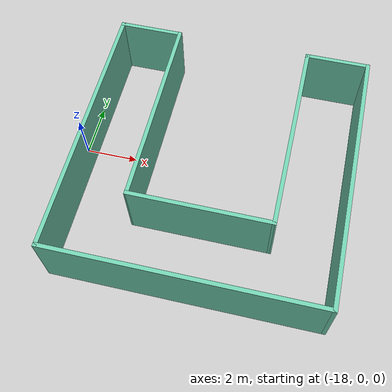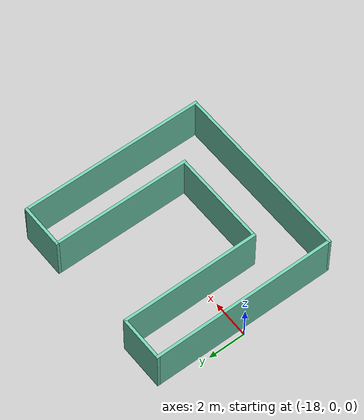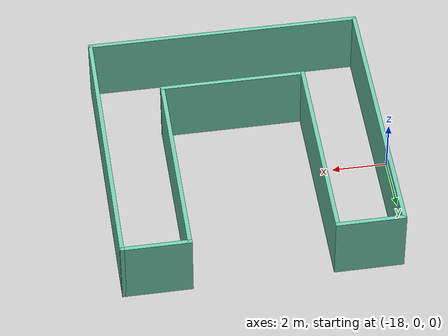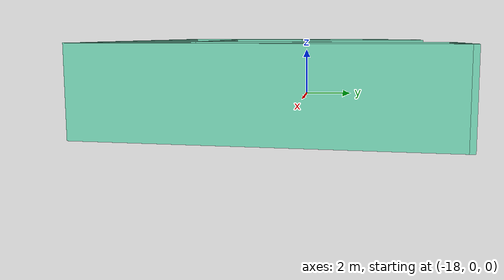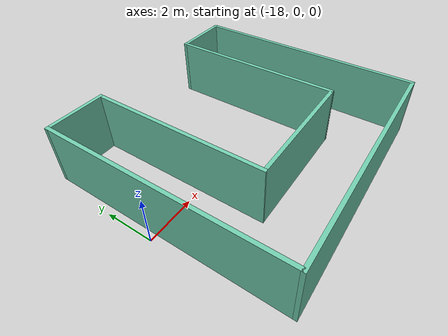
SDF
<?xml version='1.0'?>
<sdf version='1.6'>
  <model name='mybuilding'>
    <pose frame=''>-12.7241 -0.244758 0 0 -0 0</pose>
    <link name='Wall_12'>
      <collision name='Wall_12_Collision'>
        <geometry>
          <box>
            <size>10 0.15 2.5</size>
          </box>
        </geometry>
        <pose frame=''>0 0 1.25 0 -0 0</pose>
      </collision>
      <visual name='Wall_12_Visual'>
        <pose frame=''>0 0 1.25 0 -0 0</pose>
        <geometry>
          <box>
            <size>10 0.15 2.5</size>
          </box>
        </geometry>
        <material>
          <script>
            <uri>file://media/materials/scripts/gazebo.material</uri>
            <name>Gazebo/Grey</name>
          </script>
          <ambient>0.435294 0.796078 0.67451 1</ambient>
        </material>
        <meta>
          <layer>0</layer>
        </meta>
      </visual>
      <pose frame=''>6.5e-05 -4.92524 0 0 -0 0</pose>
    </link>
    <link name='Wall_14'>
      <collision name='Wall_14_Collision'>
        <geometry>
          <box>
            <size>10 0.15 2.5</size>
          </box>
        </geometry>
        <pose frame=''>0 0 1.25 0 -0 0</pose>
      </collision>
      <visual name='Wall_14_Visual'>
        <pose frame=''>0 0 1.25 0 -0 0</pose>
        <geometry>
          <box>
            <size>10 0.15 2.5</size>
          </box>
        </geometry>
        <material>
          <script>
            <uri>file://media/materials/scripts/gazebo.material</uri>
            <name>Gazebo/Grey</name>
          </script>
          <ambient>0.435294 0.796078 0.67451 1</ambient>
        </material>
        <meta>
          <layer>0</layer>
        </meta>
      </visual>
      <pose frame=''>4.92507 -0.000242 0 0 -0 1.5708</pose>
    </link>
    <link name='Wall_15'>
      <collision name='Wall_15_Collision'>
        <geometry>
          <box>
            <size>2.5 0.15 2.5</size>
          </box>
        </geometry>
        <pose frame=''>0 0 1.25 0 -0 0</pose>
      </collision>
      <visual name='Wall_15_Visual'>
        <pose frame=''>0 0 1.25 0 -0 0</pose>
        <geometry>
          <box>
            <size>2.5 0.15 2.5</size>
          </box>
        </geometry>
        <material>
          <script>
            <uri>file://media/materials/scripts/gazebo.material</uri>
            <name>Gazebo/Grey</name>
          </script>
          <ambient>0.435294 0.796078 0.67451 1</ambient>
        </material>
        <meta>
          <layer>0</layer>
        </meta>
      </visual>
      <pose frame=''>3.75007 4.92476 0 0 -0 3.14159</pose>
    </link>
    <link name='Wall_17'>
      <collision name='Wall_17_Collision'>
        <geometry>
          <box>
            <size>2.5 0.15 2.5</size>
          </box>
        </geometry>
        <pose frame=''>0 0 1.25 0 -0 0</pose>
      </collision>
      <visual name='Wall_17_Visual'>
        <pose frame=''>0 0 1.25 0 -0 0</pose>
        <geometry>
          <box>
            <size>2.5 0.15 2.5</size>
          </box>
        </geometry>
        <material>
          <script>
            <uri>file://media/materials/scripts/gazebo.material</uri>
            <name>Gazebo/Grey</name>
          </script>
          <ambient>0.435294 0.796078 0.67451 1</ambient>
        </material>
        <meta>
          <layer>0</layer>
        </meta>
      </visual>
      <pose frame=''>-3.75007 4.92524 0 0 -0 0</pose>
    </link>
    <link name='Wall_18'>
      <collision name='Wall_18_Collision'>
        <geometry>
          <box>
            <size>7.5 0.15 2.5</size>
          </box>
        </geometry>
        <pose frame=''>0 0 1.25 0 -0 0</pose>
      </collision>
      <visual name='Wall_18_Visual'>
        <pose frame=''>0 0 1.25 0 -0 0</pose>
        <geometry>
          <box>
            <size>7.5 0.15 2.5</size>
          </box>
        </geometry>
        <material>
          <script>
            <uri>file://media/materials/scripts/gazebo.material</uri>
            <name>Gazebo/Grey</name>
          </script>
          <ambient>0.435294 0.796078 0.67451 1</ambient>
        </material>
        <meta>
          <layer>0</layer>
        </meta>
      </visual>
      <pose frame=''>-2.57506 1.25024 0 0 0 -1.5708</pose>
    </link>
    <link name='Wall_20'>
      <collision name='Wall_20_Collision'>
        <geometry>
          <box>
            <size>7.5 0.15 2.5</size>
          </box>
        </geometry>
        <pose frame=''>0 0 1.25 0 -0 0</pose>
      </collision>
      <visual name='Wall_20_Visual'>
        <pose frame=''>0 0 1.25 0 -0 0</pose>
        <geometry>
          <box>
            <size>7.5 0.15 2.5</size>
          </box>
        </geometry>
        <material>
          <script>
            <uri>file://media/materials/scripts/gazebo.material</uri>
            <name>Gazebo/Grey</name>
          </script>
          <ambient>0.435294 0.796078 0.67451 1</ambient>
        </material>
        <meta>
          <layer>0</layer>
        </meta>
      </visual>
      <pose frame=''>2.57506 1.24976 0 0 0 -1.5708</pose>
    </link>
    <link name='Wall_21'>
      <collision name='Wall_21_Collision'>
        <geometry>
          <box>
            <size>5.30013 0.15 2.5</size>
          </box>
        </geometry>
        <pose frame=''>0 0 1.25 0 -0 0</pose>
      </collision>
      <visual name='Wall_21_Visual'>
        <pose frame=''>0 0 1.25 0 -0 0</pose>
        <geometry>
          <box>
            <size>5.30013 0.15 2.5</size>
          </box>
        </geometry>
        <material>
          <script>
            <uri>file://media/materials/scripts/gazebo.material</uri>
            <name>Gazebo/Grey</name>
          </script>
          <ambient>0.435294 0.796078 0.67451 1</ambient>
        </material>
        <meta>
          <layer>0</layer>
        </meta>
      </visual>
      <pose frame=''>0 -2.425 0 0 -0 3.1415</pose>
    </link>
    <link name='Wall_9'>
      <collision name='Wall_9_Collision'>
        <geometry>
          <box>
            <size>10 0.15 2.5</size>
          </box>
        </geometry>
        <pose frame=''>0 0 1.25 0 -0 0</pose>
      </collision>
      <visual name='Wall_9_Visual'>
        <pose frame=''>0 0 1.25 0 -0 0</pose>
        <geometry>
          <box>
            <size>10 0.15 2.5</size>
          </box>
        </geometry>
        <material>
          <script>
            <uri>file://media/materials/scripts/gazebo.material</uri>
            <name>Gazebo/Grey</name>
          </script>
          <ambient>0.435294 0.796078 0.67451 1</ambient>
        </material>
        <meta>
          <layer>0</layer>
        </meta>
      </visual>
      <pose frame=''>-4.925 0 0 0 -0 1.57081</pose>
    </link>
    <static>1</static>
  </model>
</sdf>
